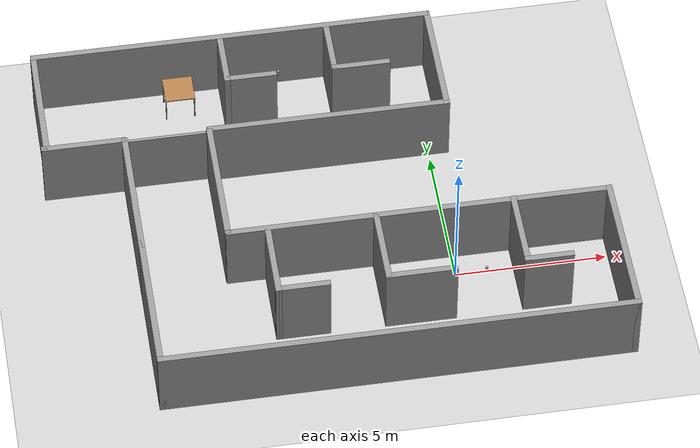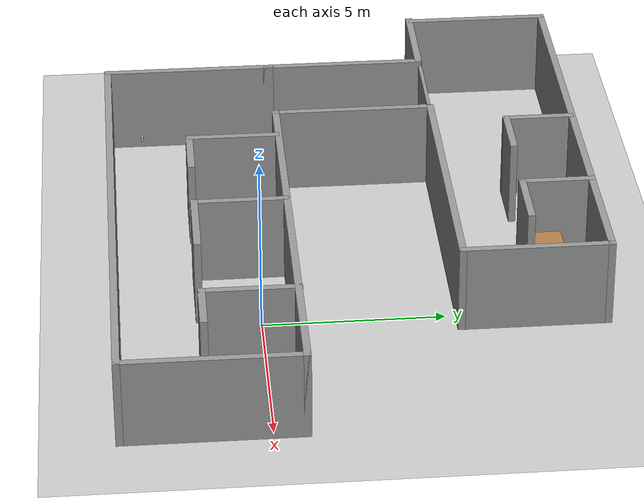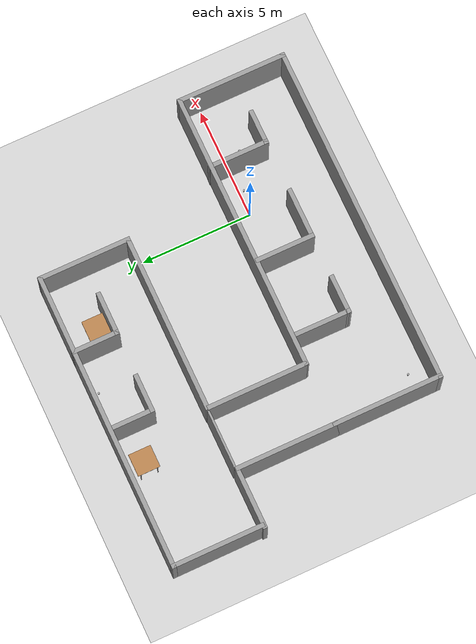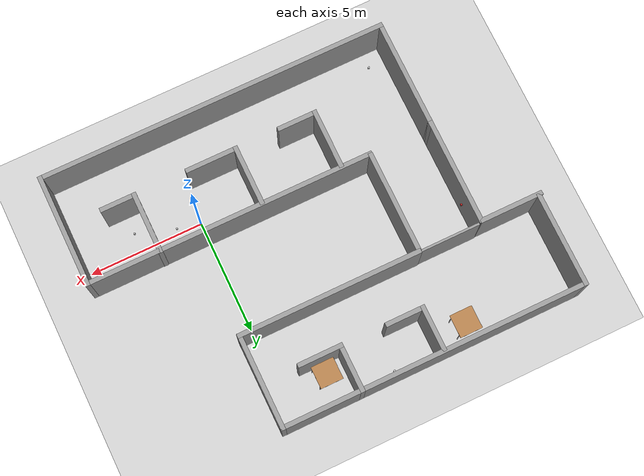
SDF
<sdf version="1.4">
 <world name="default">
  <physics type="ode">
   <gravity>0 0 -9.81</gravity>
   <ode>
    <solver><type>quick</type><iters>20</iters><sor>1</sor></solver>
    <constraints>
     <cfm>0</cfm>
     <erp>0.2</erp>
     <contact_max_correcting_vel>100</contact_max_correcting_vel>
     <contact_surface_layer>0</contact_surface_layer>
    </constraints>
   </ode>
   <real_time_update_rate>1000</real_time_update_rate>
   <max_step_size>0.001</max_step_size>
   <real_time_factor>1</real_time_factor>
  </physics>
  <light name="light1" type="directional">
   <pose>-2 0 4 0 -0 0</pose>
   <diffuse>1 1 1 1</diffuse>
   <specular>0.1 0.1 0.1 1</specular>
   <attenuation>
    <range>20</range>
    <constant>0.9</constant>
    <linear>0.01</linear>
    <quadratic>0.001</quadratic>
   </attenuation>
   <direction>0.2 0 -1</direction>
  </light>
  <model name="ground_plane">
   <static>1</static>
   <link name="link">
    <collision name="collision">
     <geometry><plane><normal>0 0 1</normal><size>100 100</size></plane></geometry>
     <surface><friction><ode><mu>100</mu><mu2>50</mu2></ode></friction></surface>
    </collision>
    <visual name="visual">
     <cast_shadows>0</cast_shadows>
     <geometry><plane><normal>0 0 1</normal><size>100 100</size></plane></geometry>
     <material>
      <script><uri>file://media/materials/scripts/gazebo.material</uri><name>Gazebo/Grey</name></script>
     </material>
    </visual>
    <velocity_decay><linear>0</linear><angular>0</angular></velocity_decay>
   </link>
  </model>
  <model name="building4">
   <pose>0.0604 0.08053 0 0 -0 0</pose>
   <link name="Wall_13">
    <collision name="Wall_13_Collision">
     <geometry><box><size>5.01 0.2 2.5</size></box></geometry>
     <pose>0 0 1.25 0 -0 0</pose>
    </collision>
    <visual name="Wall_13_Visual">
     <pose>0 0 1.25 0 -0 0</pose>
     <geometry><box><size>5.01 0.2 2.5</size></box></geometry>
     <material>
      <script><uri>file://media/materials/scripts/gazebo.material</uri><name>Gazebo/Grey</name></script>
     </material>
    </visual>
    <velocity_decay><linear>0</linear><angular>0</angular></velocity_decay>
    <pose>-10.233 -1.616 0 0 0 -1.5708</pose>
   </link>
   <link name="Wall_14">
    <collision name="Wall_14_Collision">
     <geometry><box><size>15.55 0.2 2.5</size></box></geometry>
     <pose>0 0 1.25 0 -0 0</pose>
    </collision>
    <visual name="Wall_14_Visual">
     <pose>0 0 1.25 0 -0 0</pose>
     <geometry><box><size>15.55 0.2 2.5</size></box></geometry>
     <material>
      <script><uri>file://media/materials/scripts/gazebo.material</uri><name>Gazebo/Grey</name></script>
     </material>
    </visual>
    <velocity_decay><linear>0</linear><angular>0</angular></velocity_decay>
    <pose>-2.55804 -4.02081 0 0 -0 2.5e-05</pose>
   </link>
   <link name="Wall_15">
    <collision name="Wall_15_Collision">
     <geometry><box><size>5.01 0.2 2.5</size></box></geometry>
     <pose>0 0 1.25 0 -0 0</pose>
    </collision>
    <visual name="Wall_15_Visual">
     <pose>0 0 1.25 0 -0 0</pose>
     <geometry><box><size>5.01 0.2 2.5</size></box></geometry>
     <material>
      <script><uri>file://media/materials/scripts/gazebo.material</uri><name>Gazebo/Grey</name></script>
     </material>
    </visual>
    <velocity_decay><linear>0</linear><angular>0</angular></velocity_decay>
    <pose>5.11693 -1.61562 0 0 -0 1.5708</pose>
   </link>
   <link name="Wall_16">
    <collision name="Wall_16_Collision">
     <geometry><box><size>12.72 0.2 2.5</size></box></geometry>
     <pose>0 0 1.25 0 -0 0</pose>
    </collision>
    <visual name="Wall_16_Visual">
     <pose>0 0 1.25 0 -0 0</pose>
     <geometry><box><size>12.72 0.2 2.5</size></box></geometry>
     <material>
      <script><uri>file://media/materials/scripts/gazebo.material</uri><name>Gazebo/Grey</name></script>
     </material>
    </visual>
    <velocity_decay><linear>0</linear><angular>0</angular></velocity_decay>
    <pose>-1.14308 0.789383 0 0 -0 3.14159</pose>
   </link>
   <link name="Wall_19">
    <collision name="Wall_19_Collision">
     <geometry><box><size>2.75243 0.2 2.5</size></box></geometry>
     <pose>0 0 1.25 0 -0 0</pose>
    </collision>
    <visual name="Wall_19_Visual">
     <pose>0 0 1.25 0 -0 0</pose>
     <geometry><box><size>2.75243 0.2 2.5</size></box></geometry>
     <material>
      <script><uri>file://media/materials/scripts/gazebo.material</uri><name>Gazebo/Grey</name></script>
     </material>
    </visual>
    <velocity_decay><linear>0</linear><angular>0</angular></velocity_decay>
    <pose>1.95298 -0.471453 0 0 0 -1.5708</pose>
   </link>
   <link name="Wall_20">
    <collision name="Wall_20_Collision">
     <geometry><box><size>1.61606 0.2 2.5</size></box></geometry>
     <pose>0 0 1.25 0 -0 0</pose>
    </collision>
    <visual name="Wall_20_Visual">
     <pose>0 0 1.25 0 -0 0</pose>
     <geometry><box><size>1.61606 0.2 2.5</size></box></geometry>
     <material>
      <script><uri>file://media/materials/scripts/gazebo.material</uri><name>Gazebo/Grey</name></script>
     </material>
    </visual>
    <velocity_decay><linear>0</linear><angular>0</angular></velocity_decay>
    <pose>2.66102 -1.74767 0 0 -0 0</pose>
   </link>
   <link name="Wall_22">
    <collision name="Wall_22_Collision">
     <geometry><box><size>2.69952 0.2 2.5</size></box></geometry>
     <pose>0 0 1.25 0 -0 0</pose>
    </collision>
    <visual name="Wall_22_Visual">
     <pose>0 0 1.25 0 -0 0</pose>
     <geometry><box><size>2.69952 0.2 2.5</size></box></geometry>
     <material>
      <script><uri>file://media/materials/scripts/gazebo.material</uri><name>Gazebo/Grey</name></script>
     </material>
    </visual>
    <velocity_decay><linear>0</linear><angular>0</angular></velocity_decay>
    <pose>-2.56997 -0.511128 0 0 0 -1.5708</pose>
   </link>
   <link name="Wall_23">
    <collision name="Wall_23_Collision">
     <geometry><box><size>2.34347 0.2 2.5</size></box></geometry>
     <pose>0 0 1.25 0 -0 0</pose>
    </collision>
    <visual name="Wall_23_Visual">
     <pose>0 0 1.25 0 -0 0</pose>
     <geometry><box><size>2.34347 0.2 2.5</size></box></geometry>
     <material>
      <script><uri>file://media/materials/scripts/gazebo.material</uri><name>Gazebo/Grey</name></script>
     </material>
    </visual>
    <velocity_decay><linear>0</linear><angular>0</angular></velocity_decay>
    <pose>-1.49823 -1.76089 0 0 -0 0</pose>
   </link>
   <link name="Wall_27">
    <collision name="Wall_27_Collision">
     <geometry><box><size>2.67304 0.2 2.5</size></box></geometry>
     <pose>0 0 1.25 0 -0 0</pose>
    </collision>
    <visual name="Wall_27_Visual">
     <pose>0 0 1.25 0 -0 0</pose>
     <geometry><box><size>2.67304 0.2 2.5</size></box></geometry>
     <material>
      <script><uri>file://media/materials/scripts/gazebo.material</uri><name>Gazebo/Grey</name></script>
     </material>
    </visual>
    <velocity_decay><linear>0</linear><angular>0</angular></velocity_decay>
    <pose>-6.134 -0.5245 0 0 0 -1.57646</pose>
   </link>
   <link name="Wall_28">
    <collision name="Wall_28_Collision">
     <geometry><box><size>1.78778 0.2 2.5</size></box></geometry>
     <pose>0 0 1.25 0 -0 0</pose>
    </collision>
    <visual name="Wall_28_Visual">
     <pose>0 0 1.25 0 -0 0</pose>
     <geometry><box><size>1.78778 0.2 2.5</size></box></geometry>
     <material>
      <script><uri>file://media/materials/scripts/gazebo.material</uri><name>Gazebo/Grey</name></script>
     </material>
    </visual>
    <velocity_decay><linear>0</linear><angular>0</angular></velocity_decay>
    <pose>-5.34711 -1.761 0 0 -0 0</pose>
   </link>
   <link name="Wall_30">
    <collision name="Wall_30_Collision">
     <geometry><box><size>4.722 0.2 2.5</size></box></geometry>
     <pose>0 0 1.25 0 -0 0</pose>
    </collision>
    <visual name="Wall_30_Visual">
     <pose>0 0 1.25 0 -0 0</pose>
     <geometry><box><size>4.722 0.2 2.5</size></box></geometry>
     <material>
      <script><uri>file://media/materials/scripts/gazebo.material</uri><name>Gazebo/Grey</name></script>
     </material>
    </visual>
    <velocity_decay><linear>0</linear><angular>0</angular></velocity_decay>
    <pose>-10.233 2.952 0 0 -0 1.5708</pose>
   </link>
   <link name="Wall_32">
    <collision name="Wall_32_Collision">
     <geometry><box><size>4.52699 0.2 2.5</size></box></geometry>
     <pose>0 0 1.25 0 -0 0</pose>
    </collision>
    <visual name="Wall_32_Visual">
     <pose>0 0 1.25 0 -0 0</pose>
     <geometry><box><size>4.52699 0.2 2.5</size></box></geometry>
     <material>
      <script><uri>file://media/materials/scripts/gazebo.material</uri><name>Gazebo/Grey</name></script>
     </material>
    </visual>
    <velocity_decay><linear>0</linear><angular>0</angular></velocity_decay>
    <pose>-7.41943 3.02427 0 0 -0 1.5708</pose>
   </link>
   <link name="Wall_35">
    <collision name="Wall_35_Collision">
     <geometry><box><size>2.80534 0.2 2.5</size></box></geometry>
     <pose>0 0 1.25 0 -0 0</pose>
    </collision>
    <visual name="Wall_35_Visual">
     <pose>0 0 1.25 0 -0 0</pose>
     <geometry><box><size>2.80534 0.2 2.5</size></box></geometry>
     <material>
      <script><uri>file://media/materials/scripts/gazebo.material</uri><name>Gazebo/Grey</name></script>
     </material>
    </visual>
    <velocity_decay><linear>0</linear><angular>0</angular></velocity_decay>
    <pose>-11.5868 5.23749 0 0 -0 3.14159</pose>
   </link>
   <link name="Wall_38">
    <collision name="Wall_38_Collision">
     <geometry><box><size>4.19003 0.2 2.5</size></box></geometry>
     <pose>0 0 1.25 0 -0 0</pose>
    </collision>
    <visual name="Wall_38_Visual">
     <pose>0 0 1.25 0 -0 0</pose>
     <geometry><box><size>4.19003 0.2 2.5</size></box></geometry>
     <material>
      <script><uri>file://media/materials/scripts/gazebo.material</uri><name>Gazebo/Grey</name></script>
     </material>
    </visual>
    <velocity_decay><linear>0</linear><angular>0</angular></velocity_decay>
    <pose>-12.8151 7.30342 0 0 -0 1.5708</pose>
   </link>
   <link name="Wall_39">
    <collision name="Wall_39_Collision">
     <geometry><box><size>13.5347 0.2 2.5</size></box></geometry>
     <pose>0 0 1.25 0 -0 0</pose>
    </collision>
    <visual name="Wall_39_Visual">
     <pose>0 0 1.25 0 -0 0</pose>
     <geometry><box><size>13.5347 0.2 2.5</size></box></geometry>
     <material>
      <script><uri>file://media/materials/scripts/gazebo.material</uri><name>Gazebo/Grey</name></script>
     </material>
    </visual>
    <velocity_decay><linear>0</linear><angular>0</angular></velocity_decay>
    <pose>-6.14777 9.29843 0 0 -0 0</pose>
   </link>
   <link name="Wall_40">
    <collision name="Wall_40_Collision">
     <geometry><box><size>4.21663 0.2 2.5</size></box></geometry>
     <pose>0 0 1.25 0 -0 0</pose>
    </collision>
    <visual name="Wall_40_Visual">
     <pose>0 0 1.25 0 -0 0</pose>
     <geometry><box><size>4.21663 0.2 2.5</size></box></geometry>
     <material>
      <script><uri>file://media/materials/scripts/gazebo.material</uri><name>Gazebo/Grey</name></script>
     </material>
    </visual>
    <velocity_decay><linear>0</linear><angular>0</angular></velocity_decay>
    <pose>0.51957 7.29012 0 0 0 -1.5708</pose>
   </link>
   <link name="Wall_41">
    <collision name="Wall_41_Collision">
     <geometry><box><size>8.1083 0.2 2.5</size></box></geometry>
     <pose>0 0 1.25 0 -0 0</pose>
    </collision>
    <visual name="Wall_41_Visual">
     <pose>0 0 1.25 0 -0 0</pose>
     <geometry><box><size>8.1083 0.2 2.5</size></box></geometry>
     <material>
      <script><uri>file://media/materials/scripts/gazebo.material</uri><name>Gazebo/Grey</name></script>
     </material>
    </visual>
    <velocity_decay><linear>0</linear><angular>0</angular></velocity_decay>
    <pose>-3.43455 5.2818 0 0 -0 3.14159</pose>
   </link>
   <link name="Wall_43">
    <collision name="Wall_43_Collision">
     <geometry><box><size>2.14297 0.2 2.5</size></box></geometry>
     <pose>0 0 1.25 0 -0 0</pose>
    </collision>
    <visual name="Wall_43_Visual">
     <pose>0 0 1.25 0 -0 0</pose>
     <geometry><box><size>2.14297 0.2 2.5</size></box></geometry>
     <material>
      <script><uri>file://media/materials/scripts/gazebo.material</uri><name>Gazebo/Grey</name></script>
     </material>
    </visual>
    <velocity_decay><linear>0</linear><angular>0</angular></velocity_decay>
    <pose>-2.91992 8.32953 0 0 0 -1.5708</pose>
   </link>
   <link name="Wall_44">
    <collision name="Wall_44_Collision">
     <geometry><box><size>1.98106 0.2 2.5</size></box></geometry>
     <pose>0 0 1.25 0 -0 0</pose>
    </collision>
    <visual name="Wall_44_Visual">
     <pose>0 0 1.25 0 -0 0</pose>
     <geometry><box><size>1.98106 0.2 2.5</size></box></geometry>
     <material>
      <script><uri>file://media/materials/scripts/gazebo.material</uri><name>Gazebo/Grey</name></script>
     </material>
    </visual>
    <velocity_decay><linear>0</linear><angular>0</angular></velocity_decay>
    <pose>-2.02939 7.35804 0 0 -0 0</pose>
   </link>
   <link name="Wall_54">
    <collision name="Wall_54_Collision">
     <geometry><box><size>2.03541 0.2 2.5</size></box></geometry>
     <pose>0 0 1.25 0 -0 0</pose>
    </collision>
    <visual name="Wall_54_Visual">
     <pose>0 0 1.25 0 -0 0</pose>
     <geometry><box><size>2.03541 0.2 2.5</size></box></geometry>
     <material>
      <script><uri>file://media/materials/scripts/gazebo.material</uri><name>Gazebo/Grey</name></script>
     </material>
    </visual>
    <velocity_decay><linear>0</linear><angular>0</angular></velocity_decay>
    <pose>-6.52977 8.31143 0 0 0 -1.5708</pose>
   </link>
   <link name="Wall_55">
    <collision name="Wall_55_Collision">
     <geometry><box><size>1.7601 0.2 2.5</size></box></geometry>
     <pose>0 0 1.25 0 -0 0</pose>
    </collision>
    <visual name="Wall_55_Visual">
     <pose>0 0 1.25 0 -0 0</pose>
     <geometry><box><size>1.7601 0.2 2.5</size></box></geometry>
     <material>
      <script><uri>file://media/materials/scripts/gazebo.material</uri><name>Gazebo/Grey</name></script>
     </material>
    </visual>
    <velocity_decay><linear>0</linear><angular>0</angular></velocity_decay>
    <pose>-5.74972 7.39373 0 0 -0 0</pose>
   </link>
   <static>1</static>
  </model>
  <scene><ambient>0.4 0.4 0.4 1</ambient><background>0.7 0.7 0.7 1</background><shadows>1</shadows></scene>
  <spherical_coordinates>
   <surface_model>EARTH_WGS84</surface_model>
   <latitude_deg>0</latitude_deg>
   <longitude_deg>0</longitude_deg>
   <elevation>0</elevation>
   <heading_deg>0</heading_deg>
  </spherical_coordinates>
  <model name="cocacola">
   <static>0</static>
   <link name="link">
    <inertial>
     <mass>0.25</mass>
     <inertia><ixx>0</ixx><ixy>0</ixy><ixz>0</ixz><iyy>0</iyy><iyz>0</iyz><izz>0</izz></inertia>
    </inertial>
    <collision name="collision">
     <pose>0 0 0.075 -3.14159 -0 0</pose>
     <geometry><cylinder><radius>0.04</radius><length>0.15</length></cylinder></geometry>
    </collision>
    <visual name="visual">
     <pose>0 0 0.075 -3.14159 -0 0</pose>
     <geometry><cylinder><radius>0.04</radius><length>0.15</length></cylinder></geometry>
     <material>
      <script>
       <uri>model://cocacola/material/scripts</uri>
       <uri>model://cocacola/material/textures</uri>
       <name>Custom/cocacola</name>
      </script>
     </material>
    </visual>
    <velocity_decay><linear>0</linear><angular>0</angular></velocity_decay>
   </link>
   <pose>2.68091 -0.744272 0.300008 0.0001 -0.000176 2e-05</pose>
  </model>
  <model name="cocacola_0">
   <static>0</static>
   <link name="link">
    <inertial>
     <mass>0.25</mass>
     <inertia><ixx>0</ixx><ixy>0</ixy><ixz>0</ixz><iyy>0</iyy><iyz>0</iyz><izz>0</izz></inertia>
    </inertial>
    <collision name="collision">
     <pose>0 0 0.075 -3.14159 -0 0</pose>
     <geometry><cylinder><radius>0.04</radius><length>0.15</length></cylinder></geometry>
    </collision>
    <visual name="visual">
     <pose>0 0 0.075 -3.14159 -0 0</pose>
     <geometry><cylinder><radius>0.04</radius><length>0.15</length></cylinder></geometry>
     <material>
      <script>
       <uri>model://cocacola/material/scripts</uri>
       <uri>model://cocacola/material/textures</uri>
       <name>Custom/cocacola</name>
      </script>
     </material>
    </visual>
    <velocity_decay><linear>0</linear><angular>0</angular></velocity_decay>
   </link>
   <pose>1 -0.177691 0.299999 1.1e-05 -0.000228 1e-06</pose>
  </model>
  <model name="cocacola_1">
   <static>0</static>
   <link name="link">
    <inertial>
     <mass>0.25</mass>
     <inertia><ixx>0</ixx><ixy>0</ixy><ixz>0</ixz><iyy>0</iyy><iyz>0</iyz><izz>0</izz></inertia>
    </inertial>
    <collision name="collision">
     <pose>0 0 0.075 -3.14159 -0 0</pose>
     <geometry><cylinder><radius>0.04</radius><length>0.15</length></cylinder></geometry>
    </collision>
    <visual name="visual">
     <pose>0 0 0.075 -3.14159 -0 0</pose>
     <geometry><cylinder><radius>0.04</radius><length>0.15</length></cylinder></geometry>
     <material>
      <script>
       <uri>model://cocacola/material/scripts</uri>
       <uri>model://cocacola/material/textures</uri>
       <name>Custom/cocacola</name>
      </script>
     </material>
    </visual>
    <velocity_decay><linear>0</linear><angular>0</angular></velocity_decay>
   </link>
   <pose>-9.25325 -3 0.660004 0.00011 -4.7e-05 -3e-06</pose>
  </model>
  <model name="table_1m">
   <static>1</static>
   <link name="link">
    <collision name="surface">
     <pose>0 0 1.01 0 -0 0</pose>
     <geometry><box><size>1 1.01 0.03</size></box></geometry>
    </collision>
    <visual name="visual1">
     <pose>0 0 1.01 0 -0 0</pose>
     <geometry><box><size>1 1.01 0.03</size></box></geometry>
     <material>
      <script><uri>file://media/materials/scripts/gazebo.material</uri><name>Gazebo/Wood</name></script>
     </material>
    </visual>
    <collision name="front_left_leg">
     <pose>0.48 0.38 0.5005 0 -0 0</pose>
     <geometry><cylinder><radius>0.02</radius><length>1.01</length></cylinder></geometry>
    </collision>
    <visual name="front_left_leg">
     <pose>0.48 0.38 0.5005 0 -0 0</pose>
     <geometry><cylinder><radius>0.02</radius><length>1.01</length></cylinder></geometry>
     <material>
      <script><uri>file://media/materials/scripts/gazebo.material</uri><name>Gazebo/Grey</name></script>
     </material>
    </visual>
    <collision name="front_right_leg">
     <pose>0.48 -0.38 0.5005 0 -0 0</pose>
     <geometry><cylinder><radius>0.02</radius><length>1.01</length></cylinder></geometry>
    </collision>
    <visual name="front_right_leg">
     <pose>0.48 -0.38 0.5005 0 -0 0</pose>
     <geometry><cylinder><radius>0.02</radius><length>1.01</length></cylinder></geometry>
     <material>
      <script><uri>file://media/materials/scripts/gazebo.material</uri><name>Gazebo/Grey</name></script>
     </material>
    </visual>
    <collision name="back_right_leg">
     <pose>-0.48 -0.38 0.5005 0 -0 0</pose>
     <geometry><cylinder><radius>0.02</radius><length>1.01</length></cylinder></geometry>
    </collision>
    <visual name="back_right_leg">
     <pose>-0.48 -0.38 0.5005 0 -0 0</pose>
     <geometry><cylinder><radius>0.02</radius><length>1.01</length></cylinder></geometry>
     <material>
      <script><uri>file://media/materials/scripts/gazebo.material</uri><name>Gazebo/Grey</name></script>
     </material>
    </visual>
    <collision name="back_left_leg">
     <pose>-0.48 0.38 0.5005 0 -0 0</pose>
     <geometry><cylinder><radius>0.02</radius><length>1.01</length></cylinder></geometry>
    </collision>
    <visual name="back_left_leg">
     <pose>-0.48 0.38 0.5005 0 -0 0</pose>
     <geometry><cylinder><radius>0.02</radius><length>1.01</length></cylinder></geometry>
     <material>
      <script><uri>file://media/materials/scripts/gazebo.material</uri><name>Gazebo/Grey</name></script>
     </material>
    </visual>
    <velocity_decay><linear>0</linear><angular>0</angular></velocity_decay>
   </link>
   <pose>-8 8.5652 0 0 -0 0</pose>
  </model>
  <model name="cocacola_3">
   <static>0</static>
   <link name="link">
    <inertial>
     <mass>0.25</mass>
     <inertia><ixx>0</ixx><ixy>0</ixy><ixz>0</ixz><iyy>0</iyy><iyz>0</iyz><izz>0</izz></inertia>
    </inertial>
    <collision name="collision">
     <pose>0 0 0.075 -3.14159 -0 0</pose>
     <geometry><cylinder><radius>0.04</radius><length>0.15</length></cylinder></geometry>
    </collision>
    <visual name="visual">
     <pose>0 0 0.075 -3.14159 -0 0</pose>
     <geometry><cylinder><radius>0.04</radius><length>0.15</length></cylinder></geometry>
     <material>
      <script>
       <uri>model://cocacola/material/scripts</uri>
       <uri>model://cocacola/material/textures</uri>
       <name>Custom/cocacola</name>
      </script>
     </material>
    </visual>
    <velocity_decay><linear>0</linear><angular>0</angular></velocity_decay>
   </link>
   <pose>-4.52272 9.0837 0.610008 4.5e-05 -0.000192 3e-06</pose>
  </model>
  <model name="table_1m_0">
   <static>1</static>
   <link name="link">
    <collision name="surface">
     <pose>0 0 1.01 0 -0 0</pose>
     <geometry><box><size>1 1.01 0.03</size></box></geometry>
    </collision>
    <visual name="visual1">
     <pose>0 0 1.01 0 -0 0</pose>
     <geometry><box><size>1 1.01 0.03</size></box></geometry>
     <material>
      <script><uri>file://media/materials/scripts/gazebo.material</uri><name>Gazebo/Wood</name></script>
     </material>
    </visual>
    <collision name="front_left_leg">
     <pose>0.48 0.38 0.5005 0 -0 0</pose>
     <geometry><cylinder><radius>0.02</radius><length>1.01</length></cylinder></geometry>
    </collision>
    <visual name="front_left_leg">
     <pose>0.48 0.38 0.5005 0 -0 0</pose>
     <geometry><cylinder><radius>0.02</radius><length>1.01</length></cylinder></geometry>
     <material>
      <script><uri>file://media/materials/scripts/gazebo.material</uri><name>Gazebo/Grey</name></script>
     </material>
    </visual>
    <collision name="front_right_leg">
     <pose>0.48 -0.38 0.5005 0 -0 0</pose>
     <geometry><cylinder><radius>0.02</radius><length>1.01</length></cylinder></geometry>
    </collision>
    <visual name="front_right_leg">
     <pose>0.48 -0.38 0.5005 0 -0 0</pose>
     <geometry><cylinder><radius>0.02</radius><length>1.01</length></cylinder></geometry>
     <material>
      <script><uri>file://media/materials/scripts/gazebo.material</uri><name>Gazebo/Grey</name></script>
     </material>
    </visual>
    <collision name="back_right_leg">
     <pose>-0.48 -0.38 0.5005 0 -0 0</pose>
     <geometry><cylinder><radius>0.02</radius><length>1.01</length></cylinder></geometry>
    </collision>
    <visual name="back_right_leg">
     <pose>-0.48 -0.38 0.5005 0 -0 0</pose>
     <geometry><cylinder><radius>0.02</radius><length>1.01</length></cylinder></geometry>
     <material>
      <script><uri>file://media/materials/scripts/gazebo.material</uri><name>Gazebo/Grey</name></script>
     </material>
    </visual>
    <collision name="back_left_leg">
     <pose>-0.48 0.38 0.5005 0 -0 0</pose>
     <geometry><cylinder><radius>0.02</radius><length>1.01</length></cylinder></geometry>
    </collision>
    <visual name="back_left_leg">
     <pose>-0.48 0.38 0.5005 0 -0 0</pose>
     <geometry><cylinder><radius>0.02</radius><length>1.01</length></cylinder></geometry>
     <material>
      <script><uri>file://media/materials/scripts/gazebo.material</uri><name>Gazebo/Grey</name></script>
     </material>
    </visual>
    <velocity_decay><linear>0</linear><angular>0</angular></velocity_decay>
   </link>
   <pose>-2 8 0 0 -0 0</pose>
  </model>
  <model name="unit_box_2">
   <pose>-8.76269 5.37704 1.17569 0.011002 -3e-06 5e-06</pose>
   <link name="link">
    <inertial>
     <mass>1</mass>
     <inertia><ixx>1</ixx><ixy>0</ixy><ixz>0</ixz><iyy>1</iyy><iyz>0</iyz><izz>1</izz></inertia>
    </inertial>
    <collision name="collision"><geometry><box><size>2.62001 0.1 2.35</size></box></geometry></collision>
    <visual name="visual">
     <geometry><box><size>2.62001 0.1 2.35</size></box></geometry>
     <material>
      <script><uri>file://media/materials/scripts/gazebo.material</uri><name>Gazebo/Grey</name></script>
     </material>
    </visual>
    <velocity_decay><linear>0</linear><angular>0</angular></velocity_decay>
   </link>
   <static>0</static>
  </model>
  <model name="unit_cylinder_1">
   <pose>-10.0597 4.10819 1.0 1.57076 -0.005314 1.57842</pose>
   <link name="link">
    <inertial>
     <mass>1</mass>
     <inertia><ixx>1</ixx><ixy>0</ixy><ixz>0</ixz><iyy>1</iyy><iyz>0</iyz><izz>1</izz></inertia>
    </inertial>
    <collision name="collision">
     <geometry><cylinder><radius>0</radius><length>0</length></cylinder></geometry>
    </collision>
    <visual name="visual">
     <geometry><cylinder><radius>0.05</radius><length>0.1</length></cylinder></geometry>
     <material>
      <script><uri>file://media/materials/scripts/gazebo.material</uri><name>Gazebo/Red</name></script>
     </material>
    </visual>
    <velocity_decay><linear>0</linear><angular>0</angular></velocity_decay>
    <gravity>0</gravity>
   </link>
   <static>0</static>
  </model>
 </world>
</sdf>
